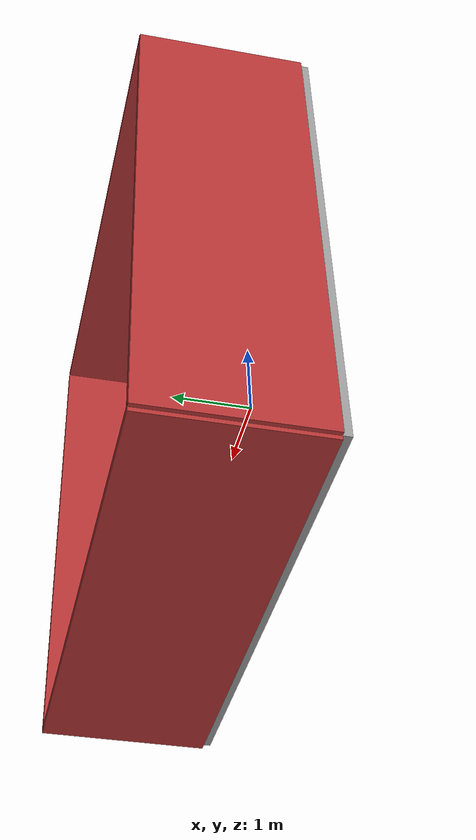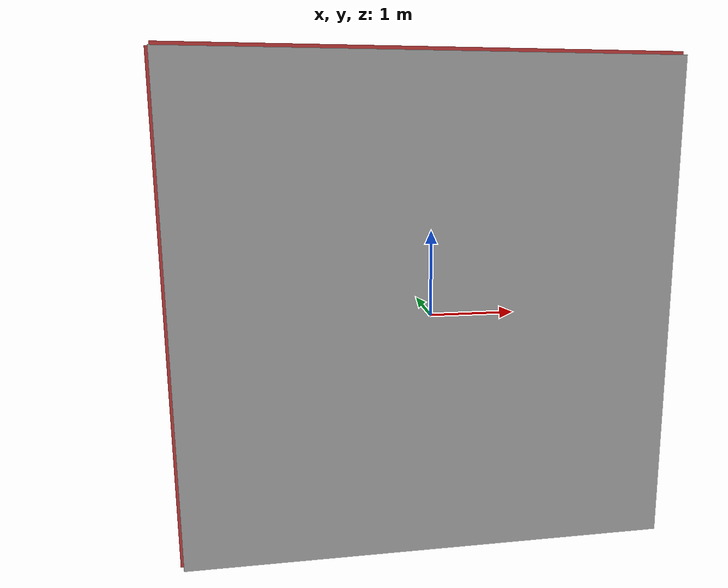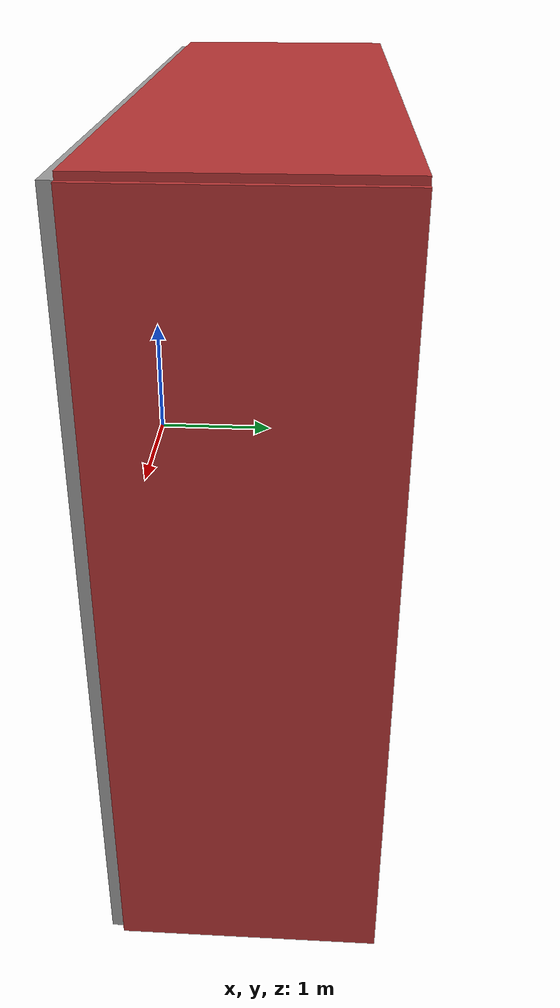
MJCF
<mujoco model="occupancy_room">
  <visual>
    <global offwidth="320" offheight="240"/>
    <map znear="0.01" zfar="20"/>
  </visual>
  <worldbody>
    <geom name="floor" type="box" pos="0 -0.05 0" size="3 0.05 3" rgba="0.6 0.6 0.6 1"/>
    <geom name="left" type="box" pos="-3 1 0" size="0.05 1 3" rgba="0.7 0.2 0.2 1"/>
    <geom name="right" type="box" pos="3 1 0" size="0.05 1 3" rgba="0.7 0.2 0.2 1"/>
    <geom name="front" type="box" pos="0 1 -3" size="3 1 0.05" rgba="0.7 0.2 0.2 1"/>
    <geom name="back" type="box" pos="0 1 3" size="3 1 0.05" rgba="0.7 0.2 0.2 1"/>
    <geom name="pillar" type="box" pos="0.8 0.75 -0.8" size="0.25 0.75 0.25" rgba="0.1 0.2 0.7 1"/>
    <camera name="cam_0" pos="-1.5 1 1.5" fovy="60"/>
    <camera name="cam_1" pos="-0.5 1 1.5" fovy="60"/>
    <camera name="cam_2" pos="0.5 1 1.5" fovy="60"/>
    <camera name="cam_3" pos="1.5 1 1.5" fovy="60"/>
  </worldbody>
</mujoco>
